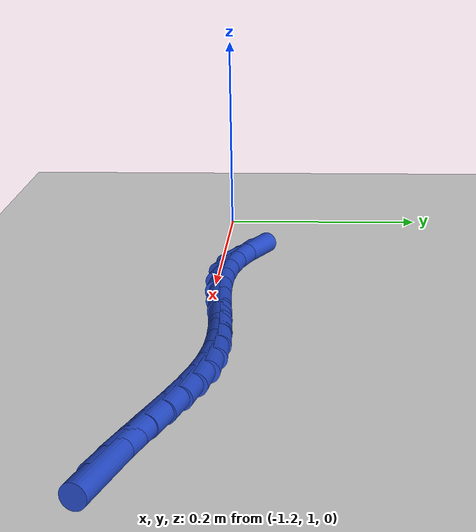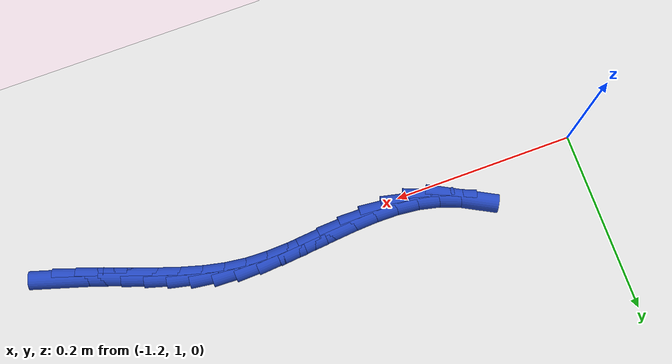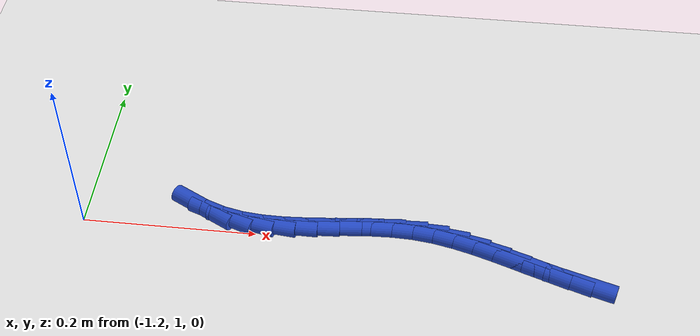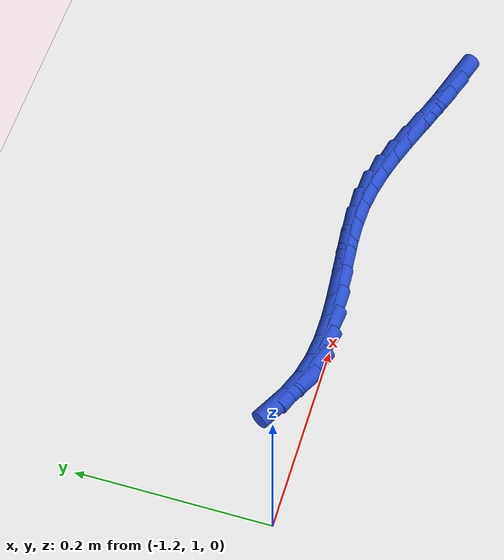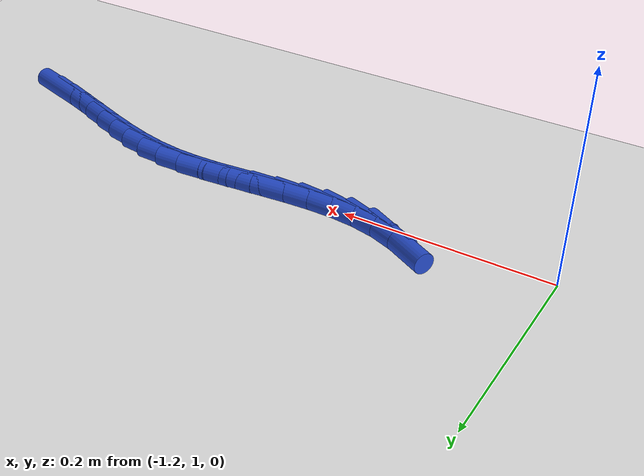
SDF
<sdf version="1.6">
 <world name="default">
  <model name="ground_plane">
   <static>1</static>
   <link name="link">
    <collision name="collision">
     <geometry><plane><normal>0 0 1</normal><size>100 100</size></plane></geometry>
     <surface><friction><ode><mu>100</mu><mu2>50</mu2></ode></friction></surface>
    </collision>
    <visual name="visual">
     <cast_shadows>0</cast_shadows>
     <geometry><plane><normal>0 0 1</normal><size>100 100</size></plane></geometry>
     <material>
      <script><uri>file://media/materials/scripts/gazebo.material</uri><name>Gazebo/WhiteGlow</name></script>
     </material>
    </visual>
   </link>
  </model>
  <model name="line">
   <link name="link_52">
    <pose>-0.6367590903299265 0.9616826209630372 0.01 0 1.57 -0.29671909833897947</pose>
    <collision name="collision">
     <geometry><cylinder><radius>0.01</radius><length>0.08</length></cylinder></geometry>
    </collision>
    <visual name="visual">
     <material>
      <script><name>Gazebo/Blue</name><uri>file://media/materials/scripts/gazebo.material</uri></script>
     </material>
     <geometry><cylinder><radius>0.01</radius><length>0.08</length></cylinder></geometry>
    </visual>
   </link>
   <link name="link_53">
    <pose>-0.6605960884370088 0.9689706647567197 0.01 0 1.57 -0.3326209452795181</pose>
    <collision name="collision">
     <geometry><cylinder><radius>0.01</radius><length>0.08</length></cylinder></geometry>
    </collision>
    <visual name="visual">
     <material>
      <script><name>Gazebo/Blue</name><uri>file://media/materials/scripts/gazebo.material</uri></script>
     </material>
     <geometry><cylinder><radius>0.01</radius><length>0.08</length></cylinder></geometry>
    </visual>
   </link>
   <link name="link_54">
    <pose>-0.6839651048086288 0.977043630479352 0.01 0 1.57 -0.3493529996150852</pose>
    <collision name="collision">
     <geometry><cylinder><radius>0.01</radius><length>0.08</length></cylinder></geometry>
    </collision>
    <visual name="visual">
     <material>
      <script><name>Gazebo/Blue</name><uri>file://media/materials/scripts/gazebo.material</uri></script>
     </material>
     <geometry><cylinder><radius>0.01</radius><length>0.08</length></cylinder></geometry>
    </visual>
   </link>
   <link name="link_55">
    <pose>-0.7070106982817136 0.9854390354942713 0.01 0 1.57 -0.34645884245418296</pose>
    <collision name="collision">
     <geometry><cylinder><radius>0.01</radius><length>0.08</length></cylinder></geometry>
    </collision>
    <visual name="visual">
     <material>
      <script><name>Gazebo/Blue</name><uri>file://media/materials/scripts/gazebo.material</uri></script>
     </material>
     <geometry><cylinder><radius>0.01</radius><length>0.08</length></cylinder></geometry>
    </visual>
   </link>
   <link name="link_56">
    <pose>-0.7298774276931896 0.993694397164814 0.01 0 1.57 -0.3234062679523985</pose>
    <collision name="collision">
     <geometry><cylinder><radius>0.01</radius><length>0.08</length></cylinder></geometry>
    </collision>
    <visual name="visual">
     <material>
      <script><name>Gazebo/Blue</name><uri>file://media/materials/scripts/gazebo.material</uri></script>
     </material>
     <geometry><cylinder><radius>0.01</radius><length>0.08</length></cylinder></geometry>
    </visual>
   </link>
   <link name="link_57">
    <pose>-0.7527098518799834 1.0013472328543171 0.01 0 1.57 -0.27961995573969894</pose>
    <collision name="collision">
     <geometry><cylinder><radius>0.01</radius><length>0.08</length></cylinder></geometry>
    </collision>
    <visual name="visual">
     <material>
      <script><name>Gazebo/Blue</name><uri>file://media/materials/scripts/gazebo.material</uri></script>
     </material>
     <geometry><cylinder><radius>0.01</radius><length>0.08</length></cylinder></geometry>
    </visual>
   </link>
   <link name="link_58">
    <pose>-0.7756525296790209 1.0079350599261168 0.01 0 1.57 -0.21477693447434978</pose>
    <collision name="collision">
     <geometry><cylinder><radius>0.01</radius><length>0.08</length></cylinder></geometry>
    </collision>
    <visual name="visual">
     <material>
      <script><name>Gazebo/Blue</name><uri>file://media/materials/scripts/gazebo.material</uri></script>
     </material>
     <geometry><cylinder><radius>0.01</radius><length>0.08</length></cylinder></geometry>
    </visual>
   </link>
   <link name="link_59">
    <pose>-0.7988500199272289 1.0129953957435496 0.01 0 1.57 -0.12939512095294445</pose>
    <collision name="collision">
     <geometry><cylinder><radius>0.01</radius><length>0.08</length></cylinder></geometry>
    </collision>
    <visual name="visual">
     <material>
      <script><name>Gazebo/Blue</name><uri>file://media/materials/scripts/gazebo.material</uri></script>
     </material>
     <geometry><cylinder><radius>0.01</radius><length>0.08</length></cylinder></geometry>
    </visual>
   </link>
   <link name="link_60">
    <pose>-0.8224468537431318 1.016065866464279 0.01 0 1.57 -0.03542578522712086</pose>
    <collision name="collision">
     <geometry><cylinder><radius>0.01</radius><length>0.08</length></cylinder></geometry>
    </collision>
    <visual name="visual">
     <material>
      <script><name>Gazebo/Blue</name><uri>file://media/materials/scripts/gazebo.material</uri></script>
     </material>
     <geometry><cylinder><radius>0.01</radius><length>0.08</length></cylinder></geometry>
    </visual>
   </link>
   <link name="link_61">
    <pose>-0.8465276369474751 1.01691930416558 0.01 0 1.57 0.03504976159609683</pose>
    <collision name="collision">
     <geometry><cylinder><radius>0.01</radius><length>0.08</length></cylinder></geometry>
    </collision>
    <visual name="visual">
     <material>
      <script><name>Gazebo/Blue</name><uri>file://media/materials/scripts/gazebo.material</uri></script>
     </material>
     <geometry><cylinder><radius>0.01</radius><length>0.08</length></cylinder></geometry>
    </visual>
   </link>
   <link name="link_62">
    <pose>-0.8709902220071917 1.0160615451141743 0.01 0 1.57 0.07758760818371419</pose>
    <collision name="collision">
     <geometry><cylinder><radius>0.01</radius><length>0.08</length></cylinder></geometry>
    </collision>
    <visual name="visual">
     <material>
      <script><name>Gazebo/Blue</name><uri>file://media/materials/scripts/gazebo.material</uri></script>
     </material>
     <geometry><cylinder><radius>0.01</radius><length>0.08</length></cylinder></geometry>
    </visual>
   </link>
   <link name="link_63">
    <pose>-0.8956961842332929 1.0141408128845788 0.01 0 1.57 0.09385467288671161</pose>
    <collision name="collision">
     <geometry><cylinder><radius>0.01</radius><length>0.08</length></cylinder></geometry>
    </collision>
    <visual name="visual">
     <material>
      <script><name>Gazebo/Blue</name><uri>file://media/materials/scripts/gazebo.material</uri></script>
     </material>
     <geometry><cylinder><radius>0.01</radius><length>0.08</length></cylinder></geometry>
    </visual>
   </link>
   <link name="link_64">
    <pose>-0.9205070989367906 1.0118053310513109 0.01 0 1.57 0.08463289792137456</pose>
    <collision name="collision">
     <geometry><cylinder><radius>0.01</radius><length>0.08</length></cylinder></geometry>
    </collision>
    <visual name="visual">
     <material>
      <script><name>Gazebo/Blue</name><uri>file://media/materials/scripts/gazebo.material</uri></script>
     </material>
     <geometry><cylinder><radius>0.01</radius><length>0.08</length></cylinder></geometry>
    </visual>
   </link>
   <link name="link_65">
    <pose>-0.9452845414286959 1.0097033231888868 0.01 0 1.57 0.04955432796736535</pose>
    <collision name="collision">
     <geometry><cylinder><radius>0.01</radius><length>0.08</length></cylinder></geometry>
    </collision>
    <visual name="visual">
     <material>
      <script><name>Gazebo/Blue</name><uri>file://media/materials/scripts/gazebo.material</uri></script>
     </material>
     <geometry><cylinder><radius>0.01</radius><length>0.08</length></cylinder></geometry>
    </visual>
   </link>
   <link name="link_66">
    <pose>-0.96989008702002 1.0084830128718227 0.01 0 1.57 -0.012743000187645999</pose>
    <collision name="collision">
     <geometry><cylinder><radius>0.01</radius><length>0.08</length></cylinder></geometry>
    </collision>
    <visual name="visual">
     <material>
      <script><name>Gazebo/Blue</name><uri>file://media/materials/scripts/gazebo.material</uri></script>
     </material>
     <geometry><cylinder><radius>0.01</radius><length>0.08</length></cylinder></geometry>
    </visual>
   </link>
   <link name="link_67">
    <pose>-0.994185311021775 1.0087926236746365 0.01 0 1.57 -0.10394779802994805</pose>
    <collision name="collision">
     <geometry><cylinder><radius>0.01</radius><length>0.08</length></cylinder></geometry>
    </collision>
    <visual name="visual">
     <material>
      <script><name>Gazebo/Blue</name><uri>file://media/materials/scripts/gazebo.material</uri></script>
     </material>
     <geometry><cylinder><radius>0.01</radius><length>0.08</length></cylinder></geometry>
    </visual>
   </link>
   <link name="link_68">
    <pose>-1.0180317887449721 1.0112803791718439 0.01 0 1.57 -0.22461763200873708</pose>
    <collision name="collision">
     <geometry><cylinder><radius>0.01</radius><length>0.08</length></cylinder></geometry>
    </collision>
    <visual name="visual">
     <material>
      <script><name>Gazebo/Blue</name><uri>file://media/materials/scripts/gazebo.material</uri></script>
     </material>
     <geometry><cylinder><radius>0.01</radius><length>0.08</length></cylinder></geometry>
    </visual>
   </link>
   <link name="link_69">
    <pose>-1.0412910955006227 1.0165945029379624 0.01 0 1.57 -0.3684386136101896</pose>
    <collision name="collision">
     <geometry><cylinder><radius>0.01</radius><length>0.08</length></cylinder></geometry>
    </collision>
    <visual name="visual">
     <material>
      <script><name>Gazebo/Blue</name><uri>file://media/materials/scripts/gazebo.material</uri></script>
     </material>
     <geometry><cylinder><radius>0.01</radius><length>0.08</length></cylinder></geometry>
    </visual>
   </link>
   <link name="link_70">
    <pose>-1.0638398889554026 1.0252998698394604 0.01 0 1.57 -0.49391397376150475</pose>
    <collision name="collision">
     <geometry><cylinder><radius>0.01</radius><length>0.08</length></cylinder></geometry>
    </collision>
    <visual name="visual">
     <material>
      <script><name>Gazebo/Blue</name><uri>file://media/materials/scripts/gazebo.material</uri></script>
     </material>
     <geometry><cylinder><radius>0.01</radius><length>0.08</length></cylinder></geometry>
    </visual>
   </link>
  </model>
 </world>
</sdf>
